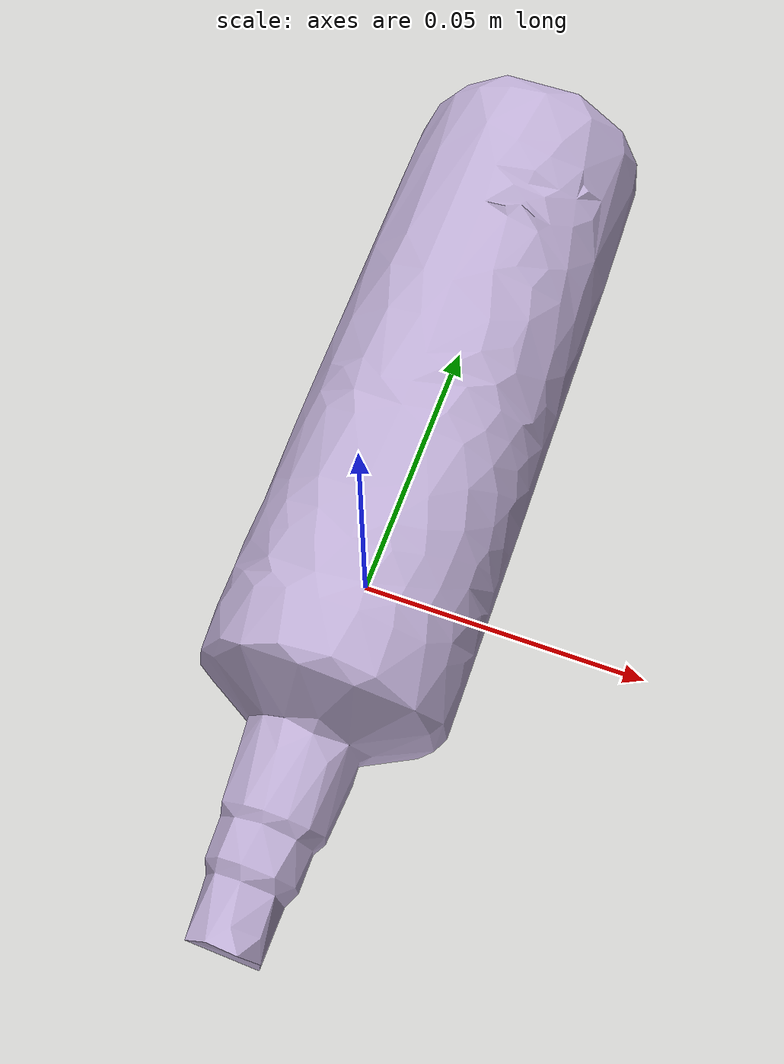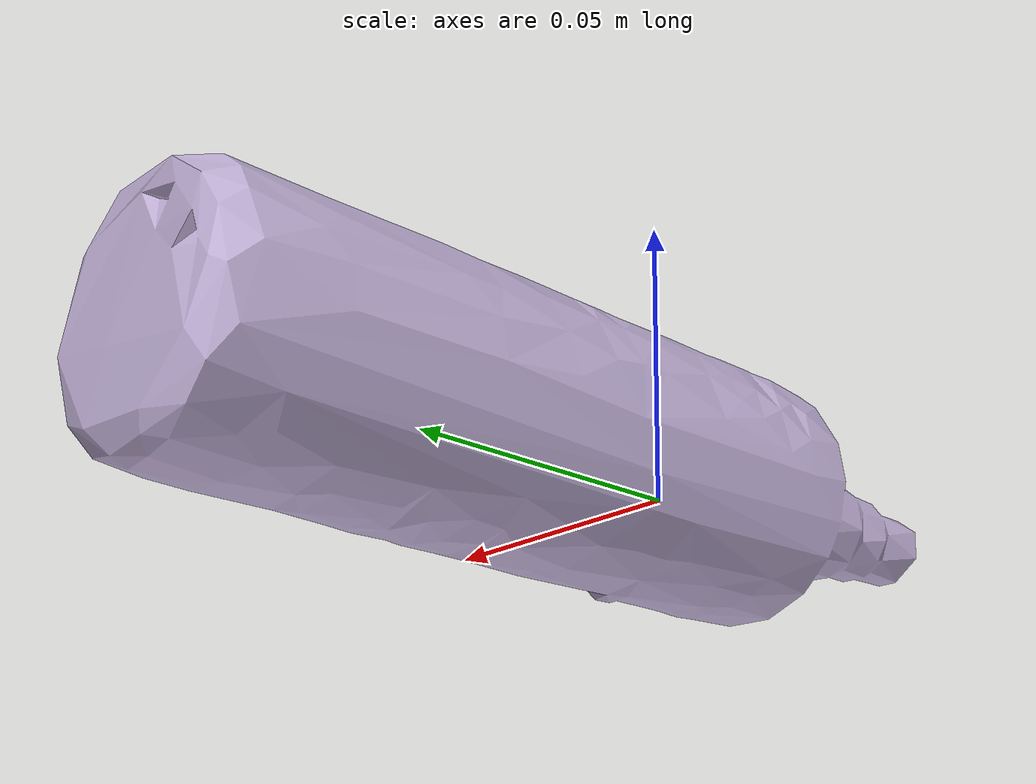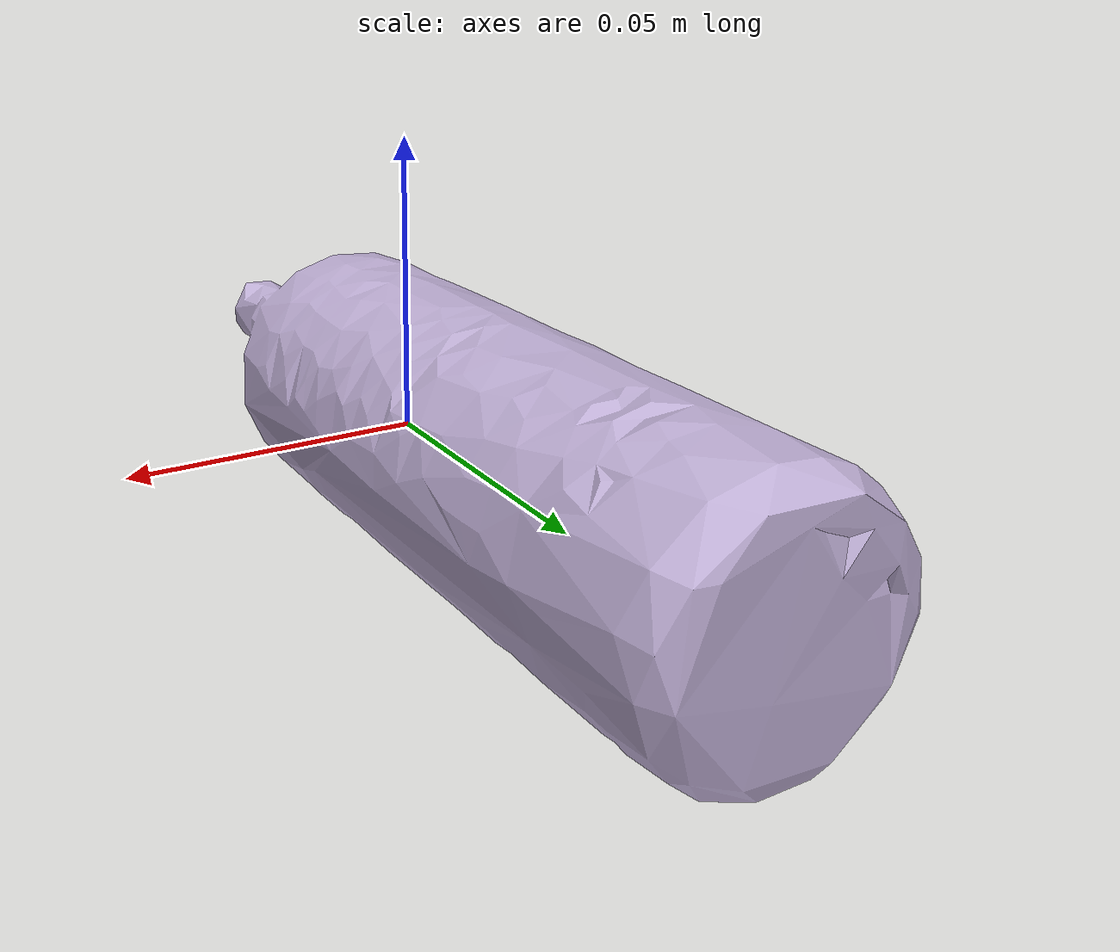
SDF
<sdf version="1.6">
  <model name="bottle7_1">
    <link name="link">
      <pose frame="">-0 0 0.005 0 -0 0</pose>
      <inertial>
        <mass>0.5</mass>
        <inertia>
          <ixx>0.0012083514401666664</ixx>
          <ixy>0</ixy>
          <ixz>0</ixz>
          <iyy>0.0012053412776666665</iyy>
          <iyz>0</iyz>
          <izz>0.0001657398375</izz>
        </inertia>
        <pose frame="">0.00011299999999999665 0.015809000000000004 0.00018800000000000056 1.57 0 3.14</pose>
      </inertial>
      <self_collide>0</self_collide>
      <kinematic>0</kinematic>
      <gravity>1</gravity>
      <visual name="visual">
        <geometry>
          <mesh>
            <uri>/home/zisu/simulator/siemens_challenge/sim_world/toolbox/bottle7_1.dae</uri>
          </mesh>
        </geometry>
        <pose frame="">0 0 0 0 -0 0</pose>
        <transparency>0</transparency>
        <cast_shadows>0</cast_shadows>
      </visual>
      <collision name="collision">
        <laser_retro>0</laser_retro>
        <max_contacts>10</max_contacts>
        <pose frame="">0.00011299999999999665 0.015809000000000004 0.00018800000000000056 1.57 0 3.14</pose>
        <geometry>
          <box>
            <size>0.04419 0.045 0.164242</size>
          </box>
        </geometry>
        <surface>
          <friction>
            <ode>
              <mu>1</mu>
              <mu2>1</mu2>
              <fdir1>0 0 0</fdir1>
              <slip1>0</slip1>
              <slip2>0</slip2>
            </ode>
            <torsional>
              <coefficient>1</coefficient>
              <patch_radius>0</patch_radius>
              <surface_radius>0.05</surface_radius>
              <use_patch_radius>0</use_patch_radius>
              <ode>
                <slip>0</slip>
              </ode>
            </torsional>
          </friction>
          <bounce>
            <restitution_coefficient>0</restitution_coefficient>
            <threshold>1e+06</threshold>
          </bounce>
          <contact>
            <collide_without_contact>0</collide_without_contact>
            <collide_without_contact_bitmask>1</collide_without_contact_bitmask>
            <collide_bitmask>1</collide_bitmask>
            <ode>
              <soft_cfm>0</soft_cfm>
              <soft_erp>0.2</soft_erp>
              <kp>100000</kp>
              <kd>1</kd>
              <max_vel>1</max_vel>
              <min_depth>0.001</min_depth>
            </ode>
            <bullet>
              <split_impulse>1</split_impulse>
              <split_impulse_penetration_threshold>-0.01</split_impulse_penetration_threshold>
              <soft_cfm>0</soft_cfm>
              <soft_erp>0.2</soft_erp>
              <kp>100000</kp>
              <kd>1</kd>
            </bullet>
          </contact>
        </surface>
      </collision>
    </link>
    <static>0</static>
    <allow_auto_disable>1</allow_auto_disable>
  </model>
</sdf>
